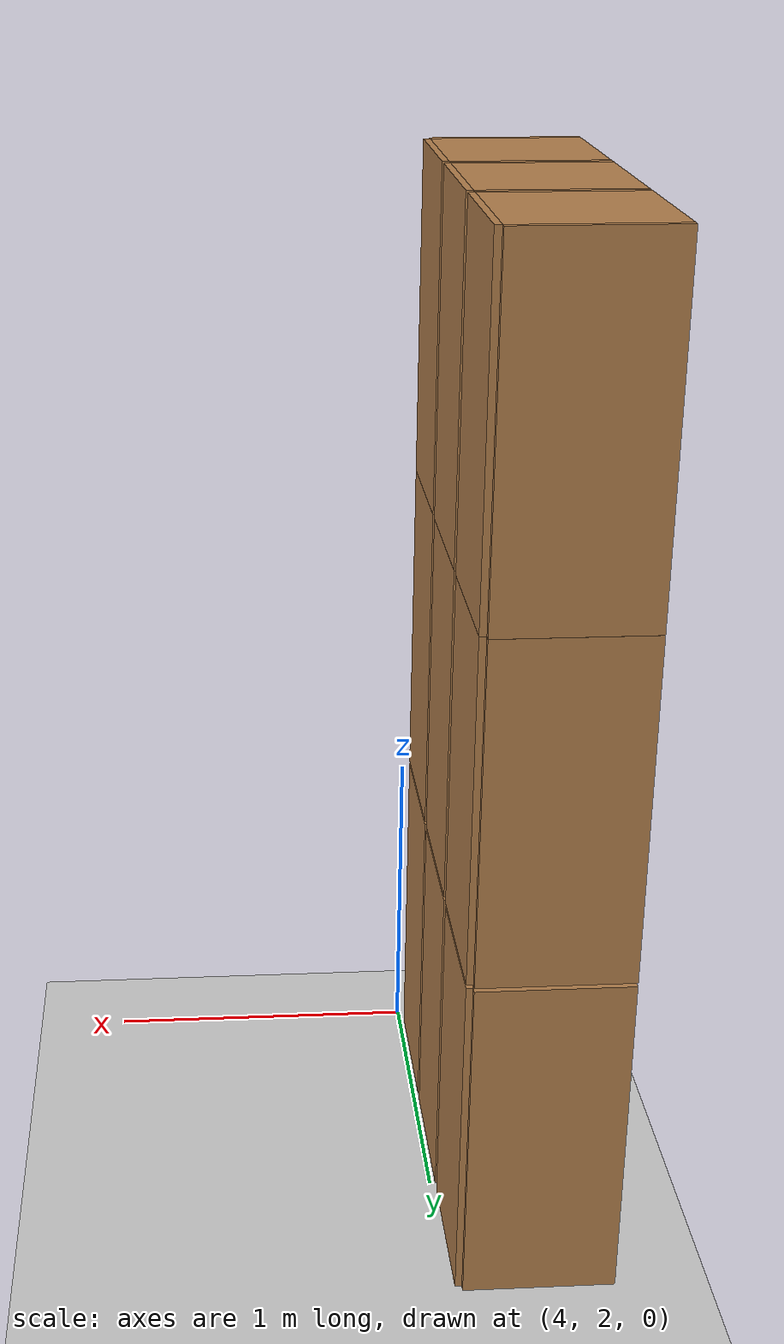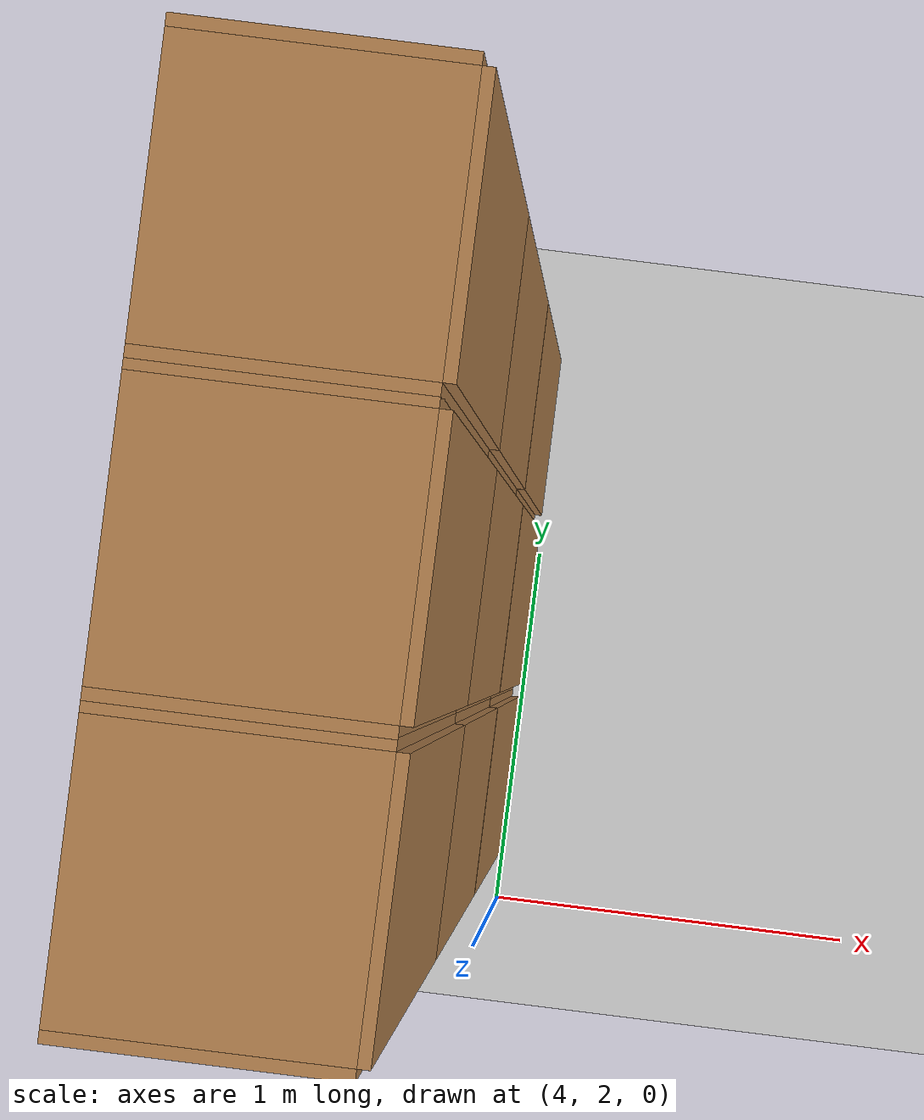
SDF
<sdf version="1.6">
 <world name="default">
  <model name="ground_plane">
   <static>1</static>
   <link name="link">
    <collision name="collision">
     <geometry><plane><normal>0 0 1</normal><size>100 100</size></plane></geometry>
     <surface>
      <contact><collide_bitmask>65535</collide_bitmask></contact>
      <friction><ode><mu>100</mu><mu2>50</mu2></ode></friction>
     </surface>
    </collision>
    <visual name="visual">
     <cast_shadows>0</cast_shadows>
     <geometry><plane><normal>0 0 1</normal><size>100 100</size></plane></geometry>
     <material>
      <script><uri>file://media/materials/scripts/gazebo.material</uri><name>Gazebo/Grey</name></script>
     </material>
    </visual>
   </link>
  </model>
  <model name="Locker18_clone_4_clone_1_clone">
   <model name="Locker18">
    <model name="Locker3">
     <model name="cabinet">
      <static>1</static>
      <link name="cabinet_bottom_plate">
       <inertial>
        <pose>0 0 -1 0 -0 0</pose>
        <inertia><ixx>2.05</ixx><ixy>0</ixy><ixz>0</ixz><iyy>2.05</iyy><iyz>0</iyz><izz>2.05</izz></inertia>
        <mass>25</mass>
       </inertial>
       <collision name="cabinet_bottom_plate_geom">
        <pose>0 0 0.01 0 -0 0</pose>
        <geometry><box><size>0.45 0.45 0.02</size></box></geometry>
       </collision>
       <visual name="cabinet_bottom_plate_geom_visual">
        <pose>0 0 0.01 0 -0 0</pose>
        <geometry><box><size>0.45 0.45 0.02</size></box></geometry>
        <material>
         <script><uri>file://media/materials/scripts/gazebo.material</uri><name>Gazebo/Wood</name></script>
        </material>
       </visual>
       <collision name="cabinet_bottom_plate_geom_cabinet_back_plate">
        <pose>0.235 0 0.51 0 -0 0</pose>
        <geometry><box><size>0.02 0.45 1.02</size></box></geometry>
       </collision>
       <visual name="cabinet_bottom_plate_geom_cabinet_back_plate_visual">
        <pose>0.235 0 0.51 0 -0 0</pose>
        <geometry><box><size>0.02 0.45 1.02</size></box></geometry>
        <material>
         <script><uri>file://media/materials/scripts/gazebo.material</uri><name>Gazebo/Wood</name></script>
        </material>
       </visual>
       <collision name="cabinet_bottom_plate_geom_cabinet_left_plate">
        <pose>0 0.235 0.51 0 -0 0</pose>
        <geometry><box><size>0.45 0.02 1.02</size></box></geometry>
       </collision>
       <visual name="cabinet_bottom_plate_geom_cabinet_left_plate_visual">
        <pose>0 0.235 0.51 0 -0 0</pose>
        <geometry><box><size>0.45 0.02 1.02</size></box></geometry>
        <material>
         <script><uri>file://media/materials/scripts/gazebo.material</uri><name>Gazebo/Wood</name></script>
        </material>
       </visual>
       <collision name="cabinet_bottom_plate_geom_cabinet_middle_plate">
        <pose>0 0 0.51 0 -0 0</pose>
        <geometry><box><size>0.45 0.45 0.02</size></box></geometry>
       </collision>
       <visual name="cabinet_bottom_plate_geom_cabinet_middle_plate_visual">
        <pose>0 0 0.51 0 -0 0</pose>
        <geometry><box><size>0.45 0.45 0.02</size></box></geometry>
        <material>
         <script><uri>file://media/materials/scripts/gazebo.material</uri><name>Gazebo/Wood</name></script>
        </material>
       </visual>
       <collision name="cabinet_bottom_plate_geom_cabinet_right_plate">
        <pose>0 -0.235 0.51 0 -0 0</pose>
        <geometry><box><size>0.45 0.02 1.02</size></box></geometry>
       </collision>
       <visual name="cabinet_bottom_plate_geom_cabinet_right_plate_visual">
        <pose>0 -0.235 0.51 0 -0 0</pose>
        <geometry><box><size>0.45 0.02 1.02</size></box></geometry>
        <material>
         <script><uri>file://media/materials/scripts/gazebo.material</uri><name>Gazebo/Wood</name></script>
        </material>
       </visual>
       <collision name="cabinet_bottom_plate_geom_cabinet_top_plate">
        <pose>0 0 1.01 0 -0 0</pose>
        <geometry><box><size>0.45 0.45 0.02</size></box></geometry>
       </collision>
       <visual name="cabinet_bottom_plate_geom_cabinet_top_plate_visual">
        <pose>0 0 1.01 0 -0 0</pose>
        <geometry><box><size>0.45 0.45 0.02</size></box></geometry>
        <material>
         <script><uri>file://media/materials/scripts/gazebo.material</uri><name>Gazebo/Wood</name></script>
        </material>
       </visual>
      </link>
      <pose>-0.676968 1.45758 0 0 -0 0</pose>
     </model>
     <model name="cabinet_clone">
      <static>1</static>
      <link name="cabinet_bottom_plate">
       <inertial>
        <pose>0 0 -1 0 -0 0</pose>
        <inertia><ixx>2.05</ixx><ixy>0</ixy><ixz>0</ixz><iyy>2.05</iyy><iyz>0</iyz><izz>2.05</izz></inertia>
        <mass>25</mass>
       </inertial>
       <collision name="cabinet_bottom_plate_geom">
        <pose>0 0 0.01 0 -0 0</pose>
        <geometry><box><size>0.45 0.45 0.02</size></box></geometry>
       </collision>
       <visual name="cabinet_bottom_plate_geom_visual">
        <pose>0 0 0.01 0 -0 0</pose>
        <geometry><box><size>0.45 0.45 0.02</size></box></geometry>
        <material>
         <script><uri>file://media/materials/scripts/gazebo.material</uri><name>Gazebo/Wood</name></script>
        </material>
       </visual>
       <collision name="cabinet_bottom_plate_geom_cabinet_back_plate">
        <pose>0.235 0 0.51 0 -0 0</pose>
        <geometry><box><size>0.02 0.45 1.02</size></box></geometry>
       </collision>
       <visual name="cabinet_bottom_plate_geom_cabinet_back_plate_visual">
        <pose>0.235 0 0.51 0 -0 0</pose>
        <geometry><box><size>0.02 0.45 1.02</size></box></geometry>
        <material>
         <script><uri>file://media/materials/scripts/gazebo.material</uri><name>Gazebo/Wood</name></script>
        </material>
       </visual>
       <collision name="cabinet_bottom_plate_geom_cabinet_left_plate">
        <pose>0 0.235 0.51 0 -0 0</pose>
        <geometry><box><size>0.45 0.02 1.02</size></box></geometry>
       </collision>
       <visual name="cabinet_bottom_plate_geom_cabinet_left_plate_visual">
        <pose>0 0.235 0.51 0 -0 0</pose>
        <geometry><box><size>0.45 0.02 1.02</size></box></geometry>
        <material>
         <script><uri>file://media/materials/scripts/gazebo.material</uri><name>Gazebo/Wood</name></script>
        </material>
       </visual>
       <collision name="cabinet_bottom_plate_geom_cabinet_middle_plate">
        <pose>0 0 0.51 0 -0 0</pose>
        <geometry><box><size>0.45 0.45 0.02</size></box></geometry>
       </collision>
       <visual name="cabinet_bottom_plate_geom_cabinet_middle_plate_visual">
        <pose>0 0 0.51 0 -0 0</pose>
        <geometry><box><size>0.45 0.45 0.02</size></box></geometry>
        <material>
         <script><uri>file://media/materials/scripts/gazebo.material</uri><name>Gazebo/Wood</name></script>
        </material>
       </visual>
       <collision name="cabinet_bottom_plate_geom_cabinet_right_plate">
        <pose>0 -0.235 0.51 0 -0 0</pose>
        <geometry><box><size>0.45 0.02 1.02</size></box></geometry>
       </collision>
       <visual name="cabinet_bottom_plate_geom_cabinet_right_plate_visual">
        <pose>0 -0.235 0.51 0 -0 0</pose>
        <geometry><box><size>0.45 0.02 1.02</size></box></geometry>
        <material>
         <script><uri>file://media/materials/scripts/gazebo.material</uri><name>Gazebo/Wood</name></script>
        </material>
       </visual>
       <collision name="cabinet_bottom_plate_geom_cabinet_top_plate">
        <pose>0 0 1.01 0 -0 0</pose>
        <geometry><box><size>0.45 0.45 0.02</size></box></geometry>
       </collision>
       <visual name="cabinet_bottom_plate_geom_cabinet_top_plate_visual">
        <pose>0 0 1.01 0 -0 0</pose>
        <geometry><box><size>0.45 0.45 0.02</size></box></geometry>
        <material>
         <script><uri>file://media/materials/scripts/gazebo.material</uri><name>Gazebo/Wood</name></script>
        </material>
       </visual>
      </link>
      <pose>-0.676968 0.970971 0 0 -0 0</pose>
     </model>
     <model name="cabinet_clone_0">
      <static>1</static>
      <link name="cabinet_bottom_plate">
       <inertial>
        <pose>0 0 -1 0 -0 0</pose>
        <inertia><ixx>2.05</ixx><ixy>0</ixy><ixz>0</ixz><iyy>2.05</iyy><iyz>0</iyz><izz>2.05</izz></inertia>
        <mass>25</mass>
       </inertial>
       <collision name="cabinet_bottom_plate_geom">
        <pose>0 0 0.01 0 -0 0</pose>
        <geometry><box><size>0.45 0.45 0.02</size></box></geometry>
       </collision>
       <visual name="cabinet_bottom_plate_geom_visual">
        <pose>0 0 0.01 0 -0 0</pose>
        <geometry><box><size>0.45 0.45 0.02</size></box></geometry>
        <material>
         <script><uri>file://media/materials/scripts/gazebo.material</uri><name>Gazebo/Wood</name></script>
        </material>
       </visual>
       <collision name="cabinet_bottom_plate_geom_cabinet_back_plate">
        <pose>0.235 0 0.51 0 -0 0</pose>
        <geometry><box><size>0.02 0.45 1.02</size></box></geometry>
       </collision>
       <visual name="cabinet_bottom_plate_geom_cabinet_back_plate_visual">
        <pose>0.235 0 0.51 0 -0 0</pose>
        <geometry><box><size>0.02 0.45 1.02</size></box></geometry>
        <material>
         <script><uri>file://media/materials/scripts/gazebo.material</uri><name>Gazebo/Wood</name></script>
        </material>
       </visual>
       <collision name="cabinet_bottom_plate_geom_cabinet_left_plate">
        <pose>0 0.235 0.51 0 -0 0</pose>
        <geometry><box><size>0.45 0.02 1.02</size></box></geometry>
       </collision>
       <visual name="cabinet_bottom_plate_geom_cabinet_left_plate_visual">
        <pose>0 0.235 0.51 0 -0 0</pose>
        <geometry><box><size>0.45 0.02 1.02</size></box></geometry>
        <material>
         <script><uri>file://media/materials/scripts/gazebo.material</uri><name>Gazebo/Wood</name></script>
        </material>
       </visual>
       <collision name="cabinet_bottom_plate_geom_cabinet_middle_plate">
        <pose>0 0 0.51 0 -0 0</pose>
        <geometry><box><size>0.45 0.45 0.02</size></box></geometry>
       </collision>
       <visual name="cabinet_bottom_plate_geom_cabinet_middle_plate_visual">
        <pose>0 0 0.51 0 -0 0</pose>
        <geometry><box><size>0.45 0.45 0.02</size></box></geometry>
        <material>
         <script><uri>file://media/materials/scripts/gazebo.material</uri><name>Gazebo/Wood</name></script>
        </material>
       </visual>
       <collision name="cabinet_bottom_plate_geom_cabinet_right_plate">
        <pose>0 -0.235 0.51 0 -0 0</pose>
        <geometry><box><size>0.45 0.02 1.02</size></box></geometry>
       </collision>
       <visual name="cabinet_bottom_plate_geom_cabinet_right_plate_visual">
        <pose>0 -0.235 0.51 0 -0 0</pose>
        <geometry><box><size>0.45 0.02 1.02</size></box></geometry>
        <material>
         <script><uri>file://media/materials/scripts/gazebo.material</uri><name>Gazebo/Wood</name></script>
        </material>
       </visual>
       <collision name="cabinet_bottom_plate_geom_cabinet_top_plate">
        <pose>0 0 1.01 0 -0 0</pose>
        <geometry><box><size>0.45 0.45 0.02</size></box></geometry>
       </collision>
       <visual name="cabinet_bottom_plate_geom_cabinet_top_plate_visual">
        <pose>0 0 1.01 0 -0 0</pose>
        <geometry><box><size>0.45 0.45 0.02</size></box></geometry>
        <material>
         <script><uri>file://media/materials/scripts/gazebo.material</uri><name>Gazebo/Wood</name></script>
        </material>
       </visual>
      </link>
      <pose>-0.676968 0.48391 0 0 -0 0</pose>
     </model>
     <static>0</static>
     <pose>0 3e-06 -1.02763 0 -0 0</pose>
    </model>
    <model name="Locker3_clone">
     <model name="cabinet">
      <static>1</static>
      <link name="cabinet_bottom_plate">
       <inertial>
        <pose>0 0 -1 0 -0 0</pose>
        <inertia><ixx>2.05</ixx><ixy>0</ixy><ixz>0</ixz><iyy>2.05</iyy><iyz>0</iyz><izz>2.05</izz></inertia>
        <mass>25</mass>
       </inertial>
       <collision name="cabinet_bottom_plate_geom">
        <pose>0 0 0.01 0 -0 0</pose>
        <geometry><box><size>0.45 0.45 0.02</size></box></geometry>
       </collision>
       <visual name="cabinet_bottom_plate_geom_visual">
        <pose>0 0 0.01 0 -0 0</pose>
        <geometry><box><size>0.45 0.45 0.02</size></box></geometry>
        <material>
         <script><uri>file://media/materials/scripts/gazebo.material</uri><name>Gazebo/Wood</name></script>
        </material>
       </visual>
       <collision name="cabinet_bottom_plate_geom_cabinet_back_plate">
        <pose>0.235 0 0.51 0 -0 0</pose>
        <geometry><box><size>0.02 0.45 1.02</size></box></geometry>
       </collision>
       <visual name="cabinet_bottom_plate_geom_cabinet_back_plate_visual">
        <pose>0.235 0 0.51 0 -0 0</pose>
        <geometry><box><size>0.02 0.45 1.02</size></box></geometry>
        <material>
         <script><uri>file://media/materials/scripts/gazebo.material</uri><name>Gazebo/Wood</name></script>
        </material>
       </visual>
       <collision name="cabinet_bottom_plate_geom_cabinet_left_plate">
        <pose>0 0.235 0.51 0 -0 0</pose>
        <geometry><box><size>0.45 0.02 1.02</size></box></geometry>
       </collision>
       <visual name="cabinet_bottom_plate_geom_cabinet_left_plate_visual">
        <pose>0 0.235 0.51 0 -0 0</pose>
        <geometry><box><size>0.45 0.02 1.02</size></box></geometry>
        <material>
         <script><uri>file://media/materials/scripts/gazebo.material</uri><name>Gazebo/Wood</name></script>
        </material>
       </visual>
       <collision name="cabinet_bottom_plate_geom_cabinet_middle_plate">
        <pose>0 0 0.51 0 -0 0</pose>
        <geometry><box><size>0.45 0.45 0.02</size></box></geometry>
       </collision>
       <visual name="cabinet_bottom_plate_geom_cabinet_middle_plate_visual">
        <pose>0 0 0.51 0 -0 0</pose>
        <geometry><box><size>0.45 0.45 0.02</size></box></geometry>
        <material>
         <script><uri>file://media/materials/scripts/gazebo.material</uri><name>Gazebo/Wood</name></script>
        </material>
       </visual>
       <collision name="cabinet_bottom_plate_geom_cabinet_right_plate">
        <pose>0 -0.235 0.51 0 -0 0</pose>
        <geometry><box><size>0.45 0.02 1.02</size></box></geometry>
       </collision>
       <visual name="cabinet_bottom_plate_geom_cabinet_right_plate_visual">
        <pose>0 -0.235 0.51 0 -0 0</pose>
        <geometry><box><size>0.45 0.02 1.02</size></box></geometry>
        <material>
         <script><uri>file://media/materials/scripts/gazebo.material</uri><name>Gazebo/Wood</name></script>
        </material>
       </visual>
       <collision name="cabinet_bottom_plate_geom_cabinet_top_plate">
        <pose>0 0 1.01 0 -0 0</pose>
        <geometry><box><size>0.45 0.45 0.02</size></box></geometry>
       </collision>
       <visual name="cabinet_bottom_plate_geom_cabinet_top_plate_visual">
        <pose>0 0 1.01 0 -0 0</pose>
        <geometry><box><size>0.45 0.45 0.02</size></box></geometry>
        <material>
         <script><uri>file://media/materials/scripts/gazebo.material</uri><name>Gazebo/Wood</name></script>
        </material>
       </visual>
      </link>
      <pose>-0.676968 1.45758 0 0 -0 0</pose>
     </model>
     <model name="cabinet_clone">
      <static>1</static>
      <link name="cabinet_bottom_plate">
       <inertial>
        <pose>0 0 -1 0 -0 0</pose>
        <inertia><ixx>2.05</ixx><ixy>0</ixy><ixz>0</ixz><iyy>2.05</iyy><iyz>0</iyz><izz>2.05</izz></inertia>
        <mass>25</mass>
       </inertial>
       <collision name="cabinet_bottom_plate_geom">
        <pose>0 0 0.01 0 -0 0</pose>
        <geometry><box><size>0.45 0.45 0.02</size></box></geometry>
       </collision>
       <visual name="cabinet_bottom_plate_geom_visual">
        <pose>0 0 0.01 0 -0 0</pose>
        <geometry><box><size>0.45 0.45 0.02</size></box></geometry>
        <material>
         <script><uri>file://media/materials/scripts/gazebo.material</uri><name>Gazebo/Wood</name></script>
        </material>
       </visual>
       <collision name="cabinet_bottom_plate_geom_cabinet_back_plate">
        <pose>0.235 0 0.51 0 -0 0</pose>
        <geometry><box><size>0.02 0.45 1.02</size></box></geometry>
       </collision>
       <visual name="cabinet_bottom_plate_geom_cabinet_back_plate_visual">
        <pose>0.235 0 0.51 0 -0 0</pose>
        <geometry><box><size>0.02 0.45 1.02</size></box></geometry>
        <material>
         <script><uri>file://media/materials/scripts/gazebo.material</uri><name>Gazebo/Wood</name></script>
        </material>
       </visual>
       <collision name="cabinet_bottom_plate_geom_cabinet_left_plate">
        <pose>0 0.235 0.51 0 -0 0</pose>
        <geometry><box><size>0.45 0.02 1.02</size></box></geometry>
       </collision>
       <visual name="cabinet_bottom_plate_geom_cabinet_left_plate_visual">
        <pose>0 0.235 0.51 0 -0 0</pose>
        <geometry><box><size>0.45 0.02 1.02</size></box></geometry>
        <material>
         <script><uri>file://media/materials/scripts/gazebo.material</uri><name>Gazebo/Wood</name></script>
        </material>
       </visual>
       <collision name="cabinet_bottom_plate_geom_cabinet_middle_plate">
        <pose>0 0 0.51 0 -0 0</pose>
        <geometry><box><size>0.45 0.45 0.02</size></box></geometry>
       </collision>
       <visual name="cabinet_bottom_plate_geom_cabinet_middle_plate_visual">
        <pose>0 0 0.51 0 -0 0</pose>
        <geometry><box><size>0.45 0.45 0.02</size></box></geometry>
        <material>
         <script><uri>file://media/materials/scripts/gazebo.material</uri><name>Gazebo/Wood</name></script>
        </material>
       </visual>
       <collision name="cabinet_bottom_plate_geom_cabinet_right_plate">
        <pose>0 -0.235 0.51 0 -0 0</pose>
        <geometry><box><size>0.45 0.02 1.02</size></box></geometry>
       </collision>
       <visual name="cabinet_bottom_plate_geom_cabinet_right_plate_visual">
        <pose>0 -0.235 0.51 0 -0 0</pose>
        <geometry><box><size>0.45 0.02 1.02</size></box></geometry>
        <material>
         <script><uri>file://media/materials/scripts/gazebo.material</uri><name>Gazebo/Wood</name></script>
        </material>
       </visual>
       <collision name="cabinet_bottom_plate_geom_cabinet_top_plate">
        <pose>0 0 1.01 0 -0 0</pose>
        <geometry><box><size>0.45 0.45 0.02</size></box></geometry>
       </collision>
       <visual name="cabinet_bottom_plate_geom_cabinet_top_plate_visual">
        <pose>0 0 1.01 0 -0 0</pose>
        <geometry><box><size>0.45 0.45 0.02</size></box></geometry>
        <material>
         <script><uri>file://media/materials/scripts/gazebo.material</uri><name>Gazebo/Wood</name></script>
        </material>
       </visual>
      </link>
      <pose>-0.676968 0.970971 0 0 -0 0</pose>
     </model>
     <model name="cabinet_clone_0">
      <static>1</static>
      <link name="cabinet_bottom_plate">
       <inertial>
        <pose>0 0 -1 0 -0 0</pose>
        <inertia><ixx>2.05</ixx><ixy>0</ixy><ixz>0</ixz><iyy>2.05</iyy><iyz>0</iyz><izz>2.05</izz></inertia>
        <mass>25</mass>
       </inertial>
       <collision name="cabinet_bottom_plate_geom">
        <pose>0 0 0.01 0 -0 0</pose>
        <geometry><box><size>0.45 0.45 0.02</size></box></geometry>
       </collision>
       <visual name="cabinet_bottom_plate_geom_visual">
        <pose>0 0 0.01 0 -0 0</pose>
        <geometry><box><size>0.45 0.45 0.02</size></box></geometry>
        <material>
         <script><uri>file://media/materials/scripts/gazebo.material</uri><name>Gazebo/Wood</name></script>
        </material>
       </visual>
       <collision name="cabinet_bottom_plate_geom_cabinet_back_plate">
        <pose>0.235 0 0.51 0 -0 0</pose>
        <geometry><box><size>0.02 0.45 1.02</size></box></geometry>
       </collision>
       <visual name="cabinet_bottom_plate_geom_cabinet_back_plate_visual">
        <pose>0.235 0 0.51 0 -0 0</pose>
        <geometry><box><size>0.02 0.45 1.02</size></box></geometry>
        <material>
         <script><uri>file://media/materials/scripts/gazebo.material</uri><name>Gazebo/Wood</name></script>
        </material>
       </visual>
       <collision name="cabinet_bottom_plate_geom_cabinet_left_plate">
        <pose>0 0.235 0.51 0 -0 0</pose>
        <geometry><box><size>0.45 0.02 1.02</size></box></geometry>
       </collision>
       <visual name="cabinet_bottom_plate_geom_cabinet_left_plate_visual">
        <pose>0 0.235 0.51 0 -0 0</pose>
        <geometry><box><size>0.45 0.02 1.02</size></box></geometry>
        <material>
         <script><uri>file://media/materials/scripts/gazebo.material</uri><name>Gazebo/Wood</name></script>
        </material>
       </visual>
       <collision name="cabinet_bottom_plate_geom_cabinet_middle_plate">
        <pose>0 0 0.51 0 -0 0</pose>
        <geometry><box><size>0.45 0.45 0.02</size></box></geometry>
       </collision>
       <visual name="cabinet_bottom_plate_geom_cabinet_middle_plate_visual">
        <pose>0 0 0.51 0 -0 0</pose>
        <geometry><box><size>0.45 0.45 0.02</size></box></geometry>
        <material>
         <script><uri>file://media/materials/scripts/gazebo.material</uri><name>Gazebo/Wood</name></script>
        </material>
       </visual>
       <collision name="cabinet_bottom_plate_geom_cabinet_right_plate">
        <pose>0 -0.235 0.51 0 -0 0</pose>
        <geometry><box><size>0.45 0.02 1.02</size></box></geometry>
       </collision>
       <visual name="cabinet_bottom_plate_geom_cabinet_right_plate_visual">
        <pose>0 -0.235 0.51 0 -0 0</pose>
        <geometry><box><size>0.45 0.02 1.02</size></box></geometry>
        <material>
         <script><uri>file://media/materials/scripts/gazebo.material</uri><name>Gazebo/Wood</name></script>
        </material>
       </visual>
       <collision name="cabinet_bottom_plate_geom_cabinet_top_plate">
        <pose>0 0 1.01 0 -0 0</pose>
        <geometry><box><size>0.45 0.45 0.02</size></box></geometry>
       </collision>
       <visual name="cabinet_bottom_plate_geom_cabinet_top_plate_visual">
        <pose>0 0 1.01 0 -0 0</pose>
        <geometry><box><size>0.45 0.45 0.02</size></box></geometry>
        <material>
         <script><uri>file://media/materials/scripts/gazebo.material</uri><name>Gazebo/Wood</name></script>
        </material>
       </visual>
      </link>
      <pose>-0.676968 0.48391 0 0 -0 0</pose>
     </model>
     <static>0</static>
     <pose>0 3e-06 0.003717 0 -0 0</pose>
    </model>
    <model name="Locker3_clone_clone">
     <model name="cabinet">
      <static>1</static>
      <link name="cabinet_bottom_plate">
       <inertial>
        <pose>0 0 -1 0 -0 0</pose>
        <inertia><ixx>2.05</ixx><ixy>0</ixy><ixz>0</ixz><iyy>2.05</iyy><iyz>0</iyz><izz>2.05</izz></inertia>
        <mass>25</mass>
       </inertial>
       <collision name="cabinet_bottom_plate_geom">
        <pose>0 0 0.01 0 -0 0</pose>
        <geometry><box><size>0.45 0.45 0.02</size></box></geometry>
       </collision>
       <visual name="cabinet_bottom_plate_geom_visual">
        <pose>0 0 0.01 0 -0 0</pose>
        <geometry><box><size>0.45 0.45 0.02</size></box></geometry>
        <material>
         <script><uri>file://media/materials/scripts/gazebo.material</uri><name>Gazebo/Wood</name></script>
        </material>
       </visual>
       <collision name="cabinet_bottom_plate_geom_cabinet_back_plate">
        <pose>0.235 0 0.51 0 -0 0</pose>
        <geometry><box><size>0.02 0.45 1.02</size></box></geometry>
       </collision>
       <visual name="cabinet_bottom_plate_geom_cabinet_back_plate_visual">
        <pose>0.235 0 0.51 0 -0 0</pose>
        <geometry><box><size>0.02 0.45 1.02</size></box></geometry>
        <material>
         <script><uri>file://media/materials/scripts/gazebo.material</uri><name>Gazebo/Wood</name></script>
        </material>
       </visual>
       <collision name="cabinet_bottom_plate_geom_cabinet_left_plate">
        <pose>0 0.235 0.51 0 -0 0</pose>
        <geometry><box><size>0.45 0.02 1.02</size></box></geometry>
       </collision>
       <visual name="cabinet_bottom_plate_geom_cabinet_left_plate_visual">
        <pose>0 0.235 0.51 0 -0 0</pose>
        <geometry><box><size>0.45 0.02 1.02</size></box></geometry>
        <material>
         <script><uri>file://media/materials/scripts/gazebo.material</uri><name>Gazebo/Wood</name></script>
        </material>
       </visual>
       <collision name="cabinet_bottom_plate_geom_cabinet_middle_plate">
        <pose>0 0 0.51 0 -0 0</pose>
        <geometry><box><size>0.45 0.45 0.02</size></box></geometry>
       </collision>
       <visual name="cabinet_bottom_plate_geom_cabinet_middle_plate_visual">
        <pose>0 0 0.51 0 -0 0</pose>
        <geometry><box><size>0.45 0.45 0.02</size></box></geometry>
        <material>
         <script><uri>file://media/materials/scripts/gazebo.material</uri><name>Gazebo/Wood</name></script>
        </material>
       </visual>
       <collision name="cabinet_bottom_plate_geom_cabinet_right_plate">
        <pose>0 -0.235 0.51 0 -0 0</pose>
        <geometry><box><size>0.45 0.02 1.02</size></box></geometry>
       </collision>
       <visual name="cabinet_bottom_plate_geom_cabinet_right_plate_visual">
        <pose>0 -0.235 0.51 0 -0 0</pose>
        <geometry><box><size>0.45 0.02 1.02</size></box></geometry>
        <material>
         <script><uri>file://media/materials/scripts/gazebo.material</uri><name>Gazebo/Wood</name></script>
        </material>
       </visual>
       <collision name="cabinet_bottom_plate_geom_cabinet_top_plate">
        <pose>0 0 1.01 0 -0 0</pose>
        <geometry><box><size>0.45 0.45 0.02</size></box></geometry>
       </collision>
       <visual name="cabinet_bottom_plate_geom_cabinet_top_plate_visual">
        <pose>0 0 1.01 0 -0 0</pose>
        <geometry><box><size>0.45 0.45 0.02</size></box></geometry>
        <material>
         <script><uri>file://media/materials/scripts/gazebo.material</uri><name>Gazebo/Wood</name></script>
        </material>
       </visual>
      </link>
      <pose>-0.676968 1.45758 0 0 -0 0</pose>
     </model>
     <model name="cabinet_clone">
      <static>1</static>
      <link name="cabinet_bottom_plate">
       <inertial>
        <pose>0 0 -1 0 -0 0</pose>
        <inertia><ixx>2.05</ixx><ixy>0</ixy><ixz>0</ixz><iyy>2.05</iyy><iyz>0</iyz><izz>2.05</izz></inertia>
        <mass>25</mass>
       </inertial>
       <collision name="cabinet_bottom_plate_geom">
        <pose>0 0 0.01 0 -0 0</pose>
        <geometry><box><size>0.45 0.45 0.02</size></box></geometry>
       </collision>
       <visual name="cabinet_bottom_plate_geom_visual">
        <pose>0 0 0.01 0 -0 0</pose>
        <geometry><box><size>0.45 0.45 0.02</size></box></geometry>
        <material>
         <script><uri>file://media/materials/scripts/gazebo.material</uri><name>Gazebo/Wood</name></script>
        </material>
       </visual>
       <collision name="cabinet_bottom_plate_geom_cabinet_back_plate">
        <pose>0.235 0 0.51 0 -0 0</pose>
        <geometry><box><size>0.02 0.45 1.02</size></box></geometry>
       </collision>
       <visual name="cabinet_bottom_plate_geom_cabinet_back_plate_visual">
        <pose>0.235 0 0.51 0 -0 0</pose>
        <geometry><box><size>0.02 0.45 1.02</size></box></geometry>
        <material>
         <script><uri>file://media/materials/scripts/gazebo.material</uri><name>Gazebo/Wood</name></script>
        </material>
       </visual>
       <collision name="cabinet_bottom_plate_geom_cabinet_left_plate">
        <pose>0 0.235 0.51 0 -0 0</pose>
        <geometry><box><size>0.45 0.02 1.02</size></box></geometry>
       </collision>
       <visual name="cabinet_bottom_plate_geom_cabinet_left_plate_visual">
        <pose>0 0.235 0.51 0 -0 0</pose>
        <geometry><box><size>0.45 0.02 1.02</size></box></geometry>
        <material>
         <script><uri>file://media/materials/scripts/gazebo.material</uri><name>Gazebo/Wood</name></script>
        </material>
       </visual>
       <collision name="cabinet_bottom_plate_geom_cabinet_middle_plate">
        <pose>0 0 0.51 0 -0 0</pose>
        <geometry><box><size>0.45 0.45 0.02</size></box></geometry>
       </collision>
       <visual name="cabinet_bottom_plate_geom_cabinet_middle_plate_visual">
        <pose>0 0 0.51 0 -0 0</pose>
        <geometry><box><size>0.45 0.45 0.02</size></box></geometry>
        <material>
         <script><uri>file://media/materials/scripts/gazebo.material</uri><name>Gazebo/Wood</name></script>
        </material>
       </visual>
       <collision name="cabinet_bottom_plate_geom_cabinet_right_plate">
        <pose>0 -0.235 0.51 0 -0 0</pose>
        <geometry><box><size>0.45 0.02 1.02</size></box></geometry>
       </collision>
       <visual name="cabinet_bottom_plate_geom_cabinet_right_plate_visual">
        <pose>0 -0.235 0.51 0 -0 0</pose>
        <geometry><box><size>0.45 0.02 1.02</size></box></geometry>
        <material>
         <script><uri>file://media/materials/scripts/gazebo.material</uri><name>Gazebo/Wood</name></script>
        </material>
       </visual>
       <collision name="cabinet_bottom_plate_geom_cabinet_top_plate">
        <pose>0 0 1.01 0 -0 0</pose>
        <geometry><box><size>0.45 0.45 0.02</size></box></geometry>
       </collision>
       <visual name="cabinet_bottom_plate_geom_cabinet_top_plate_visual">
        <pose>0 0 1.01 0 -0 0</pose>
        <geometry><box><size>0.45 0.45 0.02</size></box></geometry>
        <material>
         <script><uri>file://media/materials/scripts/gazebo.material</uri><name>Gazebo/Wood</name></script>
        </material>
       </visual>
      </link>
      <pose>-0.676968 0.970971 0 0 -0 0</pose>
     </model>
     <model name="cabinet_clone_0">
      <static>1</static>
      <link name="cabinet_bottom_plate">
       <inertial>
        <pose>0 0 -1 0 -0 0</pose>
        <inertia><ixx>2.05</ixx><ixy>0</ixy><ixz>0</ixz><iyy>2.05</iyy><iyz>0</iyz><izz>2.05</izz></inertia>
        <mass>25</mass>
       </inertial>
       <collision name="cabinet_bottom_plate_geom">
        <pose>0 0 0.01 0 -0 0</pose>
        <geometry><box><size>0.45 0.45 0.02</size></box></geometry>
       </collision>
       <visual name="cabinet_bottom_plate_geom_visual">
        <pose>0 0 0.01 0 -0 0</pose>
        <geometry><box><size>0.45 0.45 0.02</size></box></geometry>
        <material>
         <script><uri>file://media/materials/scripts/gazebo.material</uri><name>Gazebo/Wood</name></script>
        </material>
       </visual>
       <collision name="cabinet_bottom_plate_geom_cabinet_back_plate">
        <pose>0.235 0 0.51 0 -0 0</pose>
        <geometry><box><size>0.02 0.45 1.02</size></box></geometry>
       </collision>
       <visual name="cabinet_bottom_plate_geom_cabinet_back_plate_visual">
        <pose>0.235 0 0.51 0 -0 0</pose>
        <geometry><box><size>0.02 0.45 1.02</size></box></geometry>
        <material>
         <script><uri>file://media/materials/scripts/gazebo.material</uri><name>Gazebo/Wood</name></script>
        </material>
       </visual>
       <collision name="cabinet_bottom_plate_geom_cabinet_left_plate">
        <pose>0 0.235 0.51 0 -0 0</pose>
        <geometry><box><size>0.45 0.02 1.02</size></box></geometry>
       </collision>
       <visual name="cabinet_bottom_plate_geom_cabinet_left_plate_visual">
        <pose>0 0.235 0.51 0 -0 0</pose>
        <geometry><box><size>0.45 0.02 1.02</size></box></geometry>
        <material>
         <script><uri>file://media/materials/scripts/gazebo.material</uri><name>Gazebo/Wood</name></script>
        </material>
       </visual>
       <collision name="cabinet_bottom_plate_geom_cabinet_middle_plate">
        <pose>0 0 0.51 0 -0 0</pose>
        <geometry><box><size>0.45 0.45 0.02</size></box></geometry>
       </collision>
       <visual name="cabinet_bottom_plate_geom_cabinet_middle_plate_visual">
        <pose>0 0 0.51 0 -0 0</pose>
        <geometry><box><size>0.45 0.45 0.02</size></box></geometry>
        <material>
         <script><uri>file://media/materials/scripts/gazebo.material</uri><name>Gazebo/Wood</name></script>
        </material>
       </visual>
       <collision name="cabinet_bottom_plate_geom_cabinet_right_plate">
        <pose>0 -0.235 0.51 0 -0 0</pose>
        <geometry><box><size>0.45 0.02 1.02</size></box></geometry>
       </collision>
       <visual name="cabinet_bottom_plate_geom_cabinet_right_plate_visual">
        <pose>0 -0.235 0.51 0 -0 0</pose>
        <geometry><box><size>0.45 0.02 1.02</size></box></geometry>
        <material>
         <script><uri>file://media/materials/scripts/gazebo.material</uri><name>Gazebo/Wood</name></script>
        </material>
       </visual>
       <collision name="cabinet_bottom_plate_geom_cabinet_top_plate">
        <pose>0 0 1.01 0 -0 0</pose>
        <geometry><box><size>0.45 0.45 0.02</size></box></geometry>
       </collision>
       <visual name="cabinet_bottom_plate_geom_cabinet_top_plate_visual">
        <pose>0 0 1.01 0 -0 0</pose>
        <geometry><box><size>0.45 0.45 0.02</size></box></geometry>
        <material>
         <script><uri>file://media/materials/scripts/gazebo.material</uri><name>Gazebo/Wood</name></script>
        </material>
       </visual>
      </link>
      <pose>-0.676968 0.48391 0 0 -0 0</pose>
     </model>
     <static>0</static>
     <pose>0 3e-06 1.02391 0 -0 0</pose>
    </model>
    <static>0</static>
    <pose>-0 4e-06 4e-06 0 -0 0</pose>
   </model>
   <static>0</static>
   <pose>4.42561 1.87614 1.08672 0 -0 0</pose>
  </model>
 </world>
</sdf>
